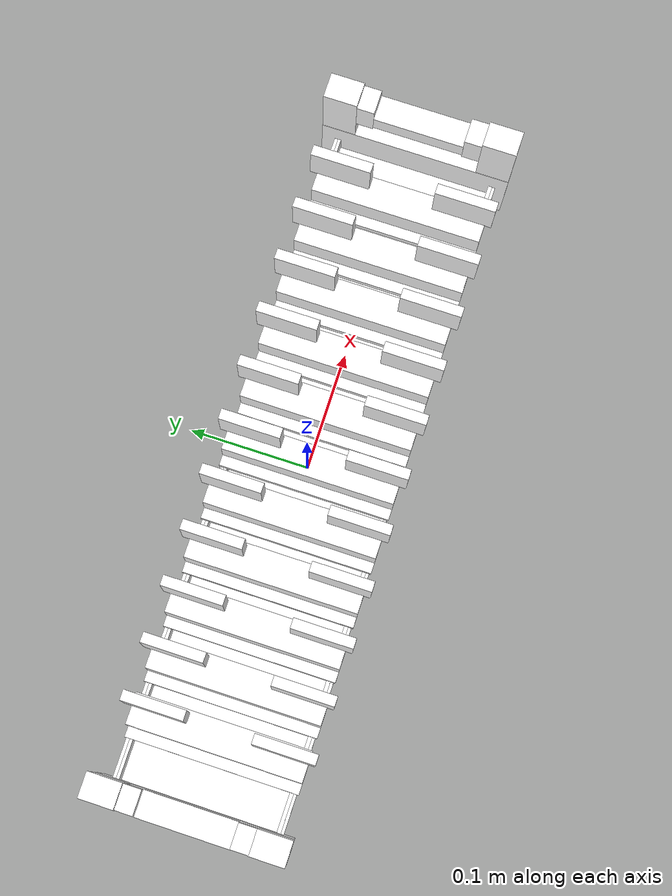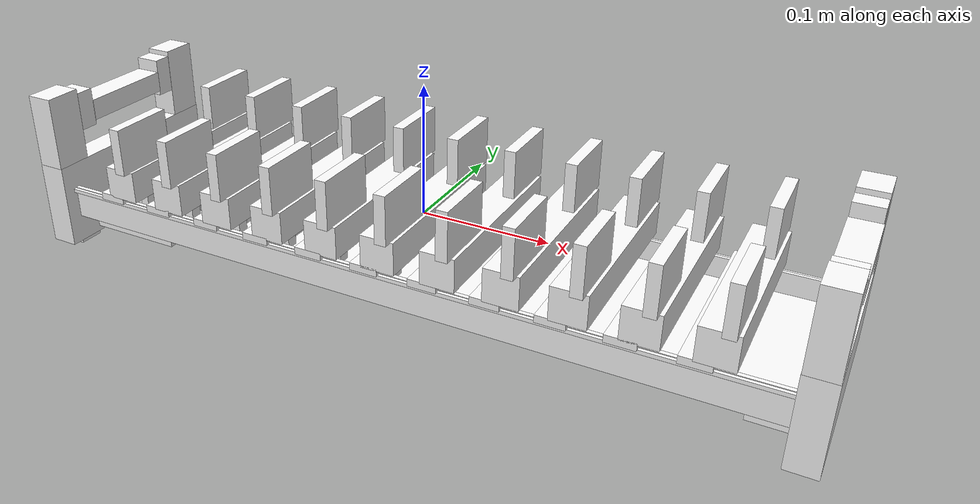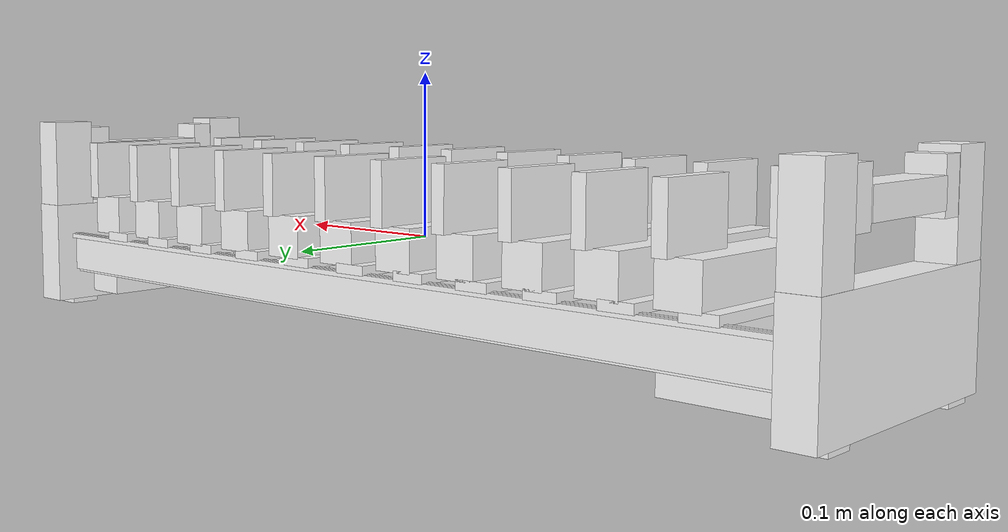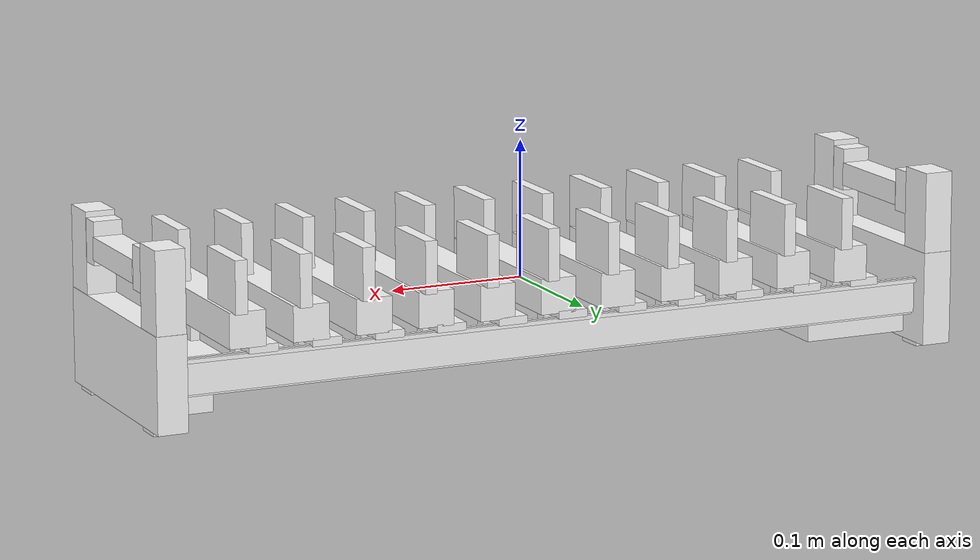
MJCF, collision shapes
<?xml version='1.0' encoding='utf-8'?>
<mujoco model="model">
  <option timestep="0.002" gravity="0.0 0.0 -9.81" />
  <compiler angle="radian" />
  <asset>
    <mesh file="visual/DishRack048.obj" name="DishRack048_vis" />
    <texture file="visual/T_BC001.png" name="DishRack048_material" type="2d" />
    <material name="DishRack048_material" rgba="1 1 1 1.0" texture="DishRack048_material" shininess="0.4472135901451111" specular="0.3103448502657381" />
  </asset>
  <default>
    <default class="visual">
      <geom conaffinity="0" contype="0" group="1" type="mesh" />
    </default>
    <default class="collision">
      <geom group="0" rgba="1 1 1 0.25" density="1.0" solref="0.004 1" solimp="0.998 0.998 0.001" />
    </default>
    <default class="spawn">
      <geom group="0" rgba="1 1 1 0.5" contype="0" conaffinity="0" />
      <site group="0" rgba="1 1 1 0.5" />
    </default>
    <default class="region">
      <geom group="1" conaffinity="0" contype="0" rgba="0 1 0 0" mass="0" />
    </default>
  </default>
  <worldbody>
    <body>
      <body name="object">
        <geom mesh="DishRack048_vis" type="mesh" solimp="0.998 0.998 0.001" solref="0.001 1" friction="0.95 0.3 0.1" class="visual" material="DishRack048_material" />
        <geom type="box" pos="0.29610802 -0.00122539 -0.02779224" size="0.011010289192199707 0.08249654620885849 0.03421784192323685" quat="1.0 0.0 0.0 0.0" class="collision" />
        <geom type="box" pos="0.29622154 -0.06359971 -0.06366624" size="0.00967186689376831 0.009817585349082947 0.0016854461282491684" quat="1.0 0.0 0.0 0.0" class="collision" />
        <geom type="box" pos="0.29622154 0.05925367 -0.06366624" size="0.00967186689376831 0.009817585349082947 0.001685447059571743" quat="1.0 0.0 0.0 0.0" class="collision" />
        <geom type="box" pos="0.27067278 -0.00090988 -0.04930715" size="0.014709368348121643 0.05348208546638489 0.008046197704970837" quat="1.0 0.0 0.0 0.0" class="collision" />
        <geom type="box" pos="0.29607646 -0.06929976 0.03588778" size="0.010728567838668823 0.014422183856368065 0.029518209397792816" quat="1.0 0.0 0.0 0.0" class="collision" />
        <geom type="box" pos="0.29602526 -0.04745695 0.04572271" size="0.010529518127441406 0.007532091811299324 0.015590324997901917" quat="1.0 0.0 0.0 0.0" class="collision" />
        <geom type="box" pos="0.29610802 -0.00147384 0.04243153" size="0.011010289192199707 0.03864607587456703 0.00825134664773941" quat="1.0 0.0 0.0 0.0" class="collision" />
        <geom type="box" pos="0.29602526 0.04467539 0.04572271" size="0.010529518127441406 0.007532091811299324 0.015590324997901917" quat="1.0 0.0 0.0 0.0" class="collision" />
        <geom type="box" pos="0.29607646 0.06651820 0.03588778" size="0.010728567838668823 0.014422181993722916 0.029518209397792816" quat="1.0 0.0 0.0 0.0" class="collision" />
        <geom type="box" pos="-0.29587139 0.06651820 0.03588778" size="0.010728567838668823 0.014422181993722916 0.029518209397792816" quat="1.0 0.0 0.0 0.0" class="collision" />
        <geom type="box" pos="-0.29582016 0.04467539 0.04572271" size="0.010529518127441406 0.007532091811299324 0.015590324997901917" quat="1.0 0.0 0.0 0.0" class="collision" />
        <geom type="box" pos="-0.29590295 -0.00147384 0.04254863" size="0.011010289192199707 0.03864607587456703 0.00854036957025528" quat="1.0 0.0 0.0 0.0" class="collision" />
        <geom type="box" pos="-0.29582016 -0.04745695 0.04572271" size="0.010529518127441406 0.007532091811299324 0.015590324997901917" quat="1.0 0.0 0.0 0.0" class="collision" />
        <geom type="box" pos="-0.29587139 -0.06929976 0.03588778" size="0.010728567838668823 0.014422183856368065 0.029518209397792816" quat="1.0 0.0 0.0 0.0" class="collision" />
        <geom type="box" pos="-0.24531081 -0.00090988 -0.04930715" size="0.03986620903015137 0.05348208546638489 0.008046196773648262" quat="1.0 0.0 0.0 0.0" class="collision" />
        <geom type="box" pos="-0.29601644 0.05925367 -0.06366624" size="0.00967186689376831 0.009817585349082947 0.001685447059571743" quat="1.0 0.0 0.0 0.0" class="collision" />
        <geom type="box" pos="-0.29601644 -0.06359971 -0.06366624" size="0.00967186689376831 0.009817585349082947 0.0016854461282491684" quat="1.0 0.0 0.0 0.0" class="collision" />
        <geom type="box" pos="-0.29590295 -0.00122539 -0.02779224" size="0.011010289192199707 0.08249654620885849 0.03421784192323685" quat="1.0 0.0 0.0 0.0" class="collision" />
        <geom type="box" pos="0.00012766 -0.00227127 -0.03634313" size="0.2853046655654907 0.06637264788150787 0.0057119326665997505" quat="1.0 0.0 0.0 0.0" class="collision" />
        <geom type="box" pos="0.00012767 -0.07016289 -0.02703119" size="0.2853046953678131 0.0016504968516528606 0.013051453977823257" quat="1.0 0.0 0.0 0.0" class="collision" />
        <geom type="box" pos="0.00012767 -0.07297112 -0.01601133" size="0.2853046953678131 0.0014765150845050812 0.0014633219689130783" quat="1.0 0.0 0.0 0.0" class="collision" />
        <geom type="box" pos="0.00012767 0.06823500 -0.01601133" size="0.2853046953678131 0.0014765150845050812 0.0014633219689130783" quat="1.0 0.0 0.0 0.0" class="collision" />
        <geom type="box" pos="0.00012767 0.06542677 -0.02703119" size="0.2853046953678131 0.0013665929436683655 0.013051453977823257" quat="1.0 0.0 0.0 0.0" class="collision" />
        <geom type="box" pos="0.22743246 -0.00225564 -0.02293043" size="0.002152353525161743 0.04684853553771973 0.008514057844877243" quat="1.0 0.0 0.0 0.0" class="collision" />
        <geom type="box" pos="0.23300920 0.03986865 -0.02293043" size="0.003491528332233429 0.004690401256084442 0.008514057844877243" quat="1.0 0.0 0.0 0.0" class="collision" />
        <geom type="box" pos="0.23300920 -0.04460655 -0.02293043" size="0.003491528332233429 0.004690403118729591 0.008514057844877243" quat="1.0 0.0 0.0 0.0" class="collision" />
        <geom type="box" pos="0.22581071 -0.00258818 -0.01215517" size="0.010980360209941864 0.07337954640388489 0.0029055625200271606" quat="1.0 0.0 0.0 0.0" class="collision" />
        <geom type="box" pos="0.23734231 -0.00258818 0.00227522" size="0.013307318091392517 0.07337954640388489 0.012779761105775833" quat="1.0 0.0 0.0 0.0" class="collision" />
        <geom type="box" pos="0.24381864 0.05098301 0.03335279" size="0.004444345831871033 0.02583899348974228 0.018857553601264954" quat="1.0 0.0 0.0 0.0" class="collision" />
        <geom type="box" pos="0.24381864 -0.05576955 0.03335279" size="0.004444345831871033 0.02583899162709713 0.018857553601264954" quat="1.0 0.0 0.0 0.0" class="collision" />
        <geom type="box" pos="0.19680050 -0.05576955 0.03335279" size="0.004444345831871033 0.02583899162709713 0.018857553601264954" quat="1.0 0.0 0.0 0.0" class="collision" />
        <geom type="box" pos="0.19680050 0.05098301 0.03335279" size="0.004444345831871033 0.02583899348974228 0.018857553601264954" quat="1.0 0.0 0.0 0.0" class="collision" />
        <geom type="box" pos="0.19073744 -0.00258818 0.00227522" size="0.013307318091392517 0.07337954640388489 0.012779761105775833" quat="1.0 0.0 0.0 0.0" class="collision" />
        <geom type="box" pos="0.17904554 -0.00258818 -0.01215517" size="0.010980352759361267 0.07337954640388489 0.0029055625200271606" quat="1.0 0.0 0.0 0.0" class="collision" />
        <geom type="box" pos="0.18631637 -0.04460655 -0.02293043" size="0.003491528332233429 0.004690403118729591 0.008514057844877243" quat="1.0 0.0 0.0 0.0" class="collision" />
        <geom type="box" pos="0.18583617 0.03986865 -0.02293043" size="0.003785600420087576 0.004690401256084442 0.008514057844877243" quat="1.0 0.0 0.0 0.0" class="collision" />
        <geom type="box" pos="0.18041433 -0.00225564 -0.02293043" size="0.002152353525161743 0.04684853553771973 0.008514057844877243" quat="1.0 0.0 0.0 0.0" class="collision" />
        <geom type="box" pos="0.15048356 -0.05576955 0.03335279" size="0.004444345831871033 0.02583899162709713 0.018857553601264954" quat="1.0 0.0 0.0 0.0" class="collision" />
        <geom type="box" pos="0.15048356 0.05098301 0.03335279" size="0.004444345831871033 0.02583899348974228 0.018857553601264954" quat="1.0 0.0 0.0 0.0" class="collision" />
        <geom type="box" pos="0.14400722 -0.00258818 0.00227522" size="0.013307318091392517 0.07337954640388489 0.012779761105775833" quat="1.0 0.0 0.0 0.0" class="collision" />
        <geom type="box" pos="0.13247563 -0.00258818 -0.01215517" size="0.010980352759361267 0.07337954640388489 0.0029055625200271606" quat="1.0 0.0 0.0 0.0" class="collision" />
        <geom type="box" pos="0.13967414 -0.04460655 -0.02293043" size="0.003491528332233429 0.004690403118729591 0.008514057844877243" quat="1.0 0.0 0.0 0.0" class="collision" />
        <geom type="box" pos="0.13967414 0.03986865 -0.02293043" size="0.003491528332233429 0.004690401256084442 0.008514057844877243" quat="1.0 0.0 0.0 0.0" class="collision" />
        <geom type="box" pos="0.13409740 -0.00225564 -0.02293043" size="0.002152353525161743 0.04684853553771973 0.008514057844877243" quat="1.0 0.0 0.0 0.0" class="collision" />
        <geom type="box" pos="0.10391834 -0.05576955 0.03335279" size="0.004444342106580734 0.02583899162709713 0.018857553601264954" quat="1.0 0.0 0.0 0.0" class="collision" />
        <geom type="box" pos="0.10391834 0.05098301 0.03335279" size="0.004444342106580734 0.02583899348974228 0.018857553601264954" quat="1.0 0.0 0.0 0.0" class="collision" />
        <geom type="box" pos="0.09744202 -0.00258818 0.00227522" size="0.013307318091392517 0.07337954640388489 0.012779761105775833" quat="1.0 0.0 0.0 0.0" class="collision" />
        <geom type="box" pos="0.08591041 -0.00258818 -0.01215517" size="0.010980356484651566 0.07337954640388489 0.0029055625200271606" quat="1.0 0.0 0.0 0.0" class="collision" />
        <geom type="box" pos="0.09310893 -0.04460655 -0.02293043" size="0.0034915246069431305 0.004690403118729591 0.008514057844877243" quat="1.0 0.0 0.0 0.0" class="collision" />
        <geom type="box" pos="0.09310893 0.03986865 -0.02293043" size="0.0034915246069431305 0.004690401256084442 0.008514057844877243" quat="1.0 0.0 0.0 0.0" class="collision" />
        <geom type="box" pos="0.08753218 -0.00225564 -0.02293043" size="0.002152353525161743 0.04684853553771973 0.008514057844877243" quat="1.0 0.0 0.0 0.0" class="collision" />
        <geom type="box" pos="-0.05238583 -0.00225564 -0.02293043" size="0.002152353525161743 0.04684853553771973 0.008514057844877243" quat="1.0 0.0 0.0 0.0" class="collision" />
        <geom type="box" pos="-0.04680907 0.03986865 -0.02293043" size="0.0034915227442979813 0.004690401256084442 0.008514057844877243" quat="1.0 0.0 0.0 0.0" class="collision" />
        <geom type="box" pos="-0.04680907 -0.04460655 -0.02293043" size="0.0034915227442979813 0.004690403118729591 0.008514057844877243" quat="1.0 0.0 0.0 0.0" class="collision" />
        <geom type="box" pos="-0.05400759 -0.00258818 -0.01215517" size="0.010980354622006416 0.07337954640388489 0.0029055625200271606" quat="1.0 0.0 0.0 0.0" class="collision" />
        <geom type="box" pos="-0.04247599 -0.00258818 0.00227522" size="0.013307319022715092 0.07337954640388489 0.012779761105775833" quat="1.0 0.0 0.0 0.0" class="collision" />
        <geom type="box" pos="-0.03599966 0.05098301 0.03335279" size="0.004444344900548458 0.02583899348974228 0.018857553601264954" quat="1.0 0.0 0.0 0.0" class="collision" />
        <geom type="box" pos="-0.03599966 -0.05576955 0.03335279" size="0.004444344900548458 0.02583899162709713 0.018857553601264954" quat="1.0 0.0 0.0 0.0" class="collision" />
        <geom type="box" pos="-0.00582059 -0.00225564 -0.02293043" size="0.002152354922145605 0.04684853553771973 0.008514057844877243" quat="1.0 0.0 0.0 0.0" class="collision" />
        <geom type="box" pos="-0.00024384 0.03986865 -0.02293043" size="0.0034915239084511995 0.004690401256084442 0.008514057844877243" quat="1.0 0.0 0.0 0.0" class="collision" />
        <geom type="box" pos="-0.00024384 -0.04460655 -0.02293043" size="0.0034915239084511995 0.004690403118729591 0.008514057844877243" quat="1.0 0.0 0.0 0.0" class="collision" />
        <geom type="box" pos="-0.00744236 -0.00258818 -0.01215517" size="0.010980355553328991 0.07337954640388489 0.0029055625200271606" quat="1.0 0.0 0.0 0.0" class="collision" />
        <geom type="box" pos="0.00408924 -0.00258818 0.00227522" size="0.013307319022715092 0.07337954640388489 0.012779761105775833" quat="1.0 0.0 0.0 0.0" class="collision" />
        <geom type="box" pos="0.01056558 0.05098301 0.03335279" size="0.004444344900548458 0.02583899348974228 0.018857553601264954" quat="1.0 0.0 0.0 0.0" class="collision" />
        <geom type="box" pos="0.01056558 -0.05576955 0.03335279" size="0.004444344900548458 0.02583899162709713 0.018857553601264954" quat="1.0 0.0 0.0 0.0" class="collision" />
        <geom type="box" pos="0.04066303 -0.00225564 -0.02293043" size="0.002152353525161743 0.04684853553771973 0.008514057844877243" quat="1.0 0.0 0.0 0.0" class="collision" />
        <geom type="box" pos="0.04633825 0.03986865 -0.02293043" size="0.0034915227442979813 0.004690401256084442 0.008514057844877243" quat="1.0 0.0 0.0 0.0" class="collision" />
        <geom type="box" pos="0.04633825 -0.04460655 -0.02293043" size="0.0034915227442979813 0.004690403118729591 0.008514057844877243" quat="1.0 0.0 0.0 0.0" class="collision" />
        <geom type="box" pos="0.03904127 -0.00258818 -0.01215517" size="0.010980355553328991 0.07337954640388489 0.0029055625200271606" quat="1.0 0.0 0.0 0.0" class="collision" />
        <geom type="box" pos="0.05067133 -0.00258818 0.00227522" size="0.013307319954037666 0.07337954640388489 0.012779761105775833" quat="1.0 0.0 0.0 0.0" class="collision" />
        <geom type="box" pos="0.05704920 0.05098301 0.03335279" size="0.004444345831871033 0.02583899348974228 0.018857553601264954" quat="1.0 0.0 0.0 0.0" class="collision" />
        <geom type="box" pos="0.05704920 -0.05576955 0.03335279" size="0.004444345831871033 0.02583899162709713 0.018857553601264954" quat="1.0 0.0 0.0 0.0" class="collision" />
        <geom type="box" pos="-0.08283884 -0.05576955 0.03335279" size="0.004444342106580734 0.02583899162709713 0.018857553601264954" quat="1.0 0.0 0.0 0.0" class="collision" />
        <geom type="box" pos="-0.08283884 0.05098301 0.03335279" size="0.004444342106580734 0.02583899348974228 0.018857553601264954" quat="1.0 0.0 0.0 0.0" class="collision" />
        <geom type="box" pos="-0.08931518 -0.00258818 0.00227522" size="0.013307318091392517 0.07337954640388489 0.012779761105775833" quat="1.0 0.0 0.0 0.0" class="collision" />
        <geom type="box" pos="-0.10084678 -0.00258818 -0.01215517" size="0.010980356484651566 0.07337954640388489 0.0029055625200271606" quat="1.0 0.0 0.0 0.0" class="collision" />
        <geom type="box" pos="-0.09354821 -0.04460655 -0.02293043" size="0.0034915246069431305 0.004690403118729591 0.008514057844877243" quat="1.0 0.0 0.0 0.0" class="collision" />
        <geom type="box" pos="-0.09354821 0.03986865 -0.02293043" size="0.0034915246069431305 0.004690401256084442 0.008514057844877243" quat="1.0 0.0 0.0 0.0" class="collision" />
        <geom type="box" pos="-0.09922501 -0.00225564 -0.02293043" size="0.002152353525161743 0.04684853553771973 0.008514057844877243" quat="1.0 0.0 0.0 0.0" class="collision" />
        <geom type="box" pos="-0.12933989 -0.05576955 0.03335279" size="0.004444342106580734 0.02583899162709713 0.018857553601264954" quat="1.0 0.0 0.0 0.0" class="collision" />
        <geom type="box" pos="-0.12933989 0.05098301 0.03335279" size="0.004444342106580734 0.02583899348974228 0.018857553601264954" quat="1.0 0.0 0.0 0.0" class="collision" />
        <geom type="box" pos="-0.13581622 -0.00258818 0.00227522" size="0.013307314366102219 0.07337954640388489 0.012779761105775833" quat="1.0 0.0 0.0 0.0" class="collision" />
        <geom type="box" pos="-0.14734782 -0.00258818 -0.01215517" size="0.010980360209941864 0.07337954640388489 0.0029055625200271606" quat="1.0 0.0 0.0 0.0" class="collision" />
        <geom type="box" pos="-0.14014931 -0.04460655 -0.02293043" size="0.003491528332233429 0.004690403118729591 0.008514057844877243" quat="1.0 0.0 0.0 0.0" class="collision" />
        <geom type="box" pos="-0.14014931 0.03986865 -0.02293043" size="0.003491528332233429 0.004690401256084442 0.008514057844877243" quat="1.0 0.0 0.0 0.0" class="collision" />
        <geom type="box" pos="-0.14572605 -0.00225564 -0.02293043" size="0.002152353525161743 0.04684853553771973 0.008514057844877243" quat="1.0 0.0 0.0 0.0" class="collision" />
        <geom type="box" pos="-0.19248730 -0.00225564 -0.02293043" size="0.002152353525161743 0.04684853553771973 0.008514057844877243" quat="1.0 0.0 0.0 0.0" class="collision" />
        <geom type="box" pos="-0.18691055 0.03986865 -0.02293043" size="0.003491528332233429 0.004690401256084442 0.008514057844877243" quat="1.0 0.0 0.0 0.0" class="collision" />
        <geom type="box" pos="-0.18691055 -0.04460655 -0.02293043" size="0.003491528332233429 0.004690403118729591 0.008514057844877243" quat="1.0 0.0 0.0 0.0" class="collision" />
        <geom type="box" pos="-0.19410910 -0.00258818 -0.01215517" size="0.010980352759361267 0.07337954640388489 0.0029055625200271606" quat="1.0 0.0 0.0 0.0" class="collision" />
        <geom type="box" pos="-0.18257748 -0.00258818 0.00227522" size="0.013307318091392517 0.07337954640388489 0.012779761105775833" quat="1.0 0.0 0.0 0.0" class="collision" />
        <geom type="box" pos="-0.17610115 0.05098301 0.03335279" size="0.004444345831871033 0.02583899348974228 0.018857553601264954" quat="1.0 0.0 0.0 0.0" class="collision" />
        <geom type="box" pos="-0.17610115 -0.05576955 0.03335279" size="0.004444345831871033 0.02583899162709713 0.018857553601264954" quat="1.0 0.0 0.0 0.0" class="collision" />
        <geom type="box" pos="-0.23916379 -0.00225564 -0.02293043" size="0.002152353525161743 0.04684853553771973 0.008514057844877243" quat="1.0 0.0 0.0 0.0" class="collision" />
        <geom type="box" pos="-0.23340848 0.03986865 -0.02293043" size="0.003491528332233429 0.004690401256084442 0.008514057844877243" quat="1.0 0.0 0.0 0.0" class="collision" />
        <geom type="box" pos="-0.23340848 -0.04460655 -0.02293043" size="0.003491528332233429 0.004690403118729591 0.008514057844877243" quat="1.0 0.0 0.0 0.0" class="collision" />
        <geom type="box" pos="-0.24078552 -0.00258818 -0.01215517" size="0.010980352759361267 0.07337954640388489 0.0029055625200271606" quat="1.0 0.0 0.0 0.0" class="collision" />
        <geom type="box" pos="-0.22925393 -0.00258818 0.00227522" size="0.013307318091392517 0.07337954640388489 0.012779761105775833" quat="1.0 0.0 0.0 0.0" class="collision" />
        <geom type="box" pos="-0.22277759 0.05098301 0.03335279" size="0.004444345831871033 0.02583899348974228 0.018857553601264954" quat="1.0 0.0 0.0 0.0" class="collision" />
        <geom type="box" pos="-0.22277759 -0.05576955 0.03335279" size="0.004444345831871033 0.02583899162709713 0.018857553601264954" quat="1.0 0.0 0.0 0.0" class="collision" />
        <geom class="region" name="reg_int_0" type="box" pos="-0.25684256 -0.0021159799999999965 0.083324945" size="0.026520060000000012 0.0731784 0.068142985" />
        <geom class="region" name="reg_int_1" type="box" pos="-0.19984485000000002 -0.002115974999999999 0.083324945" size="0.016736180000000003 0.07317839500000001 0.068142985" />
        <geom class="region" name="reg_int_2" type="box" pos="-0.15289491 -0.0021159799999999965 0.083324945" size="0.015944940000000005 0.0731784 0.068142985" />
        <geom class="region" name="reg_int_3" type="box" pos="-0.105981975 -0.0021159799999999965 0.083324945" size="0.016181605 0.0731784 0.068142985" />
        <geom class="region" name="reg_int_4" type="box" pos="-0.059482035 -0.0021159799999999965 0.083324945" size="0.016500064999999998 0.0731784 0.068142985" />
        <geom class="region" name="reg_int_5" type="box" pos="-0.01304781 -0.0021159799999999965 0.083324945" size="0.0160317 0.0731784 0.068142985" />
        <geom class="region" name="reg_int_6" type="box" pos="0.03368517 -0.0021159799999999965 0.083324945" size="0.01633274 0.0731784 0.068142985" />
        <geom class="region" name="reg_int_7" type="box" pos="0.08048437 -0.0021159799999999965 0.083324945" size="0.016016310000000006 0.0731784 0.068142985" />
        <geom class="region" name="reg_int_8" type="box" pos="0.127157005 -0.0021159799999999965 0.083324945" size="0.015982375000000007 0.0731784 0.068142985" />
        <geom class="region" name="reg_int_9" type="box" pos="0.173973055 -0.0021159799999999965 0.083324945" size="0.015589205000000009 0.0731784 0.068142985" />
        <geom class="region" name="reg_int_10" type="box" pos="0.22031571 -0.0021159799999999965 0.083324945" size="0.01606452 0.0731784 0.068142985" />
        <geom class="region" name="reg_int_11" type="box" pos="0.26678107500000003 -0.0021159799999999965 0.083324945" size="0.015661255000000013 0.0731784 0.068142985" />
        <geom size="0.30963289 0.08551765 0.06782435" pos="-0.0 0.0 -0.0" name="reg_bbox" class="region" type="box" quat="1.0 0.0 0.0 0.0" />
        </body>
    </body>
  </worldbody>
  <actuator />
</mujoco>
